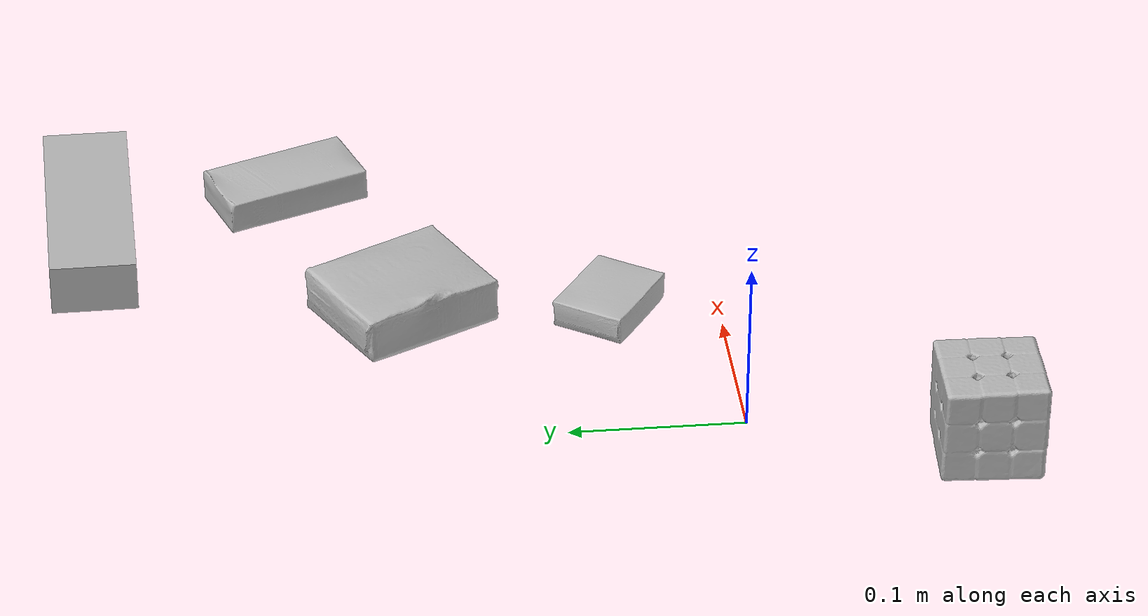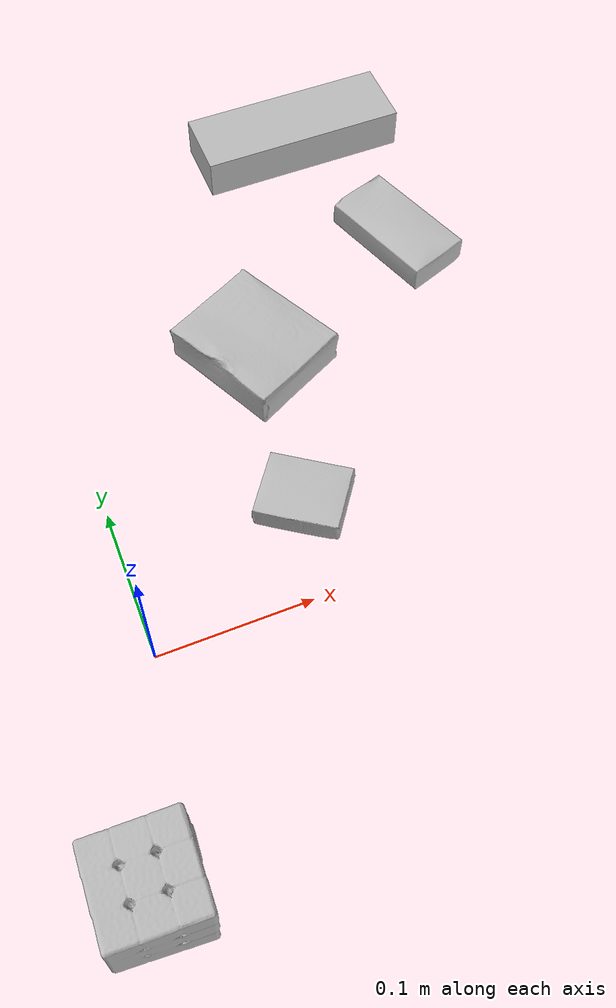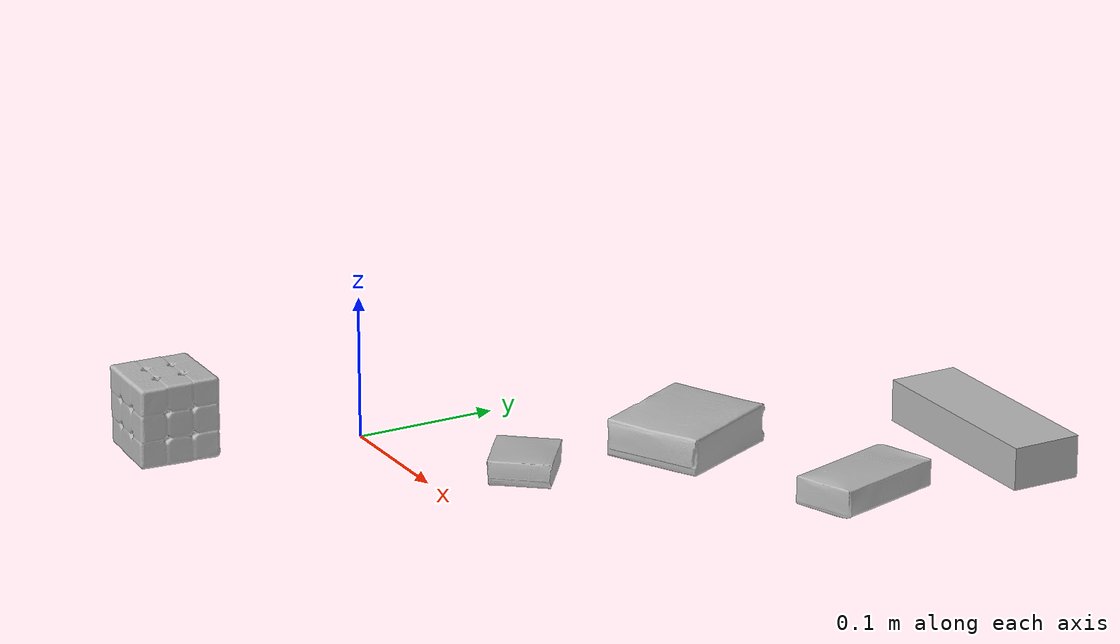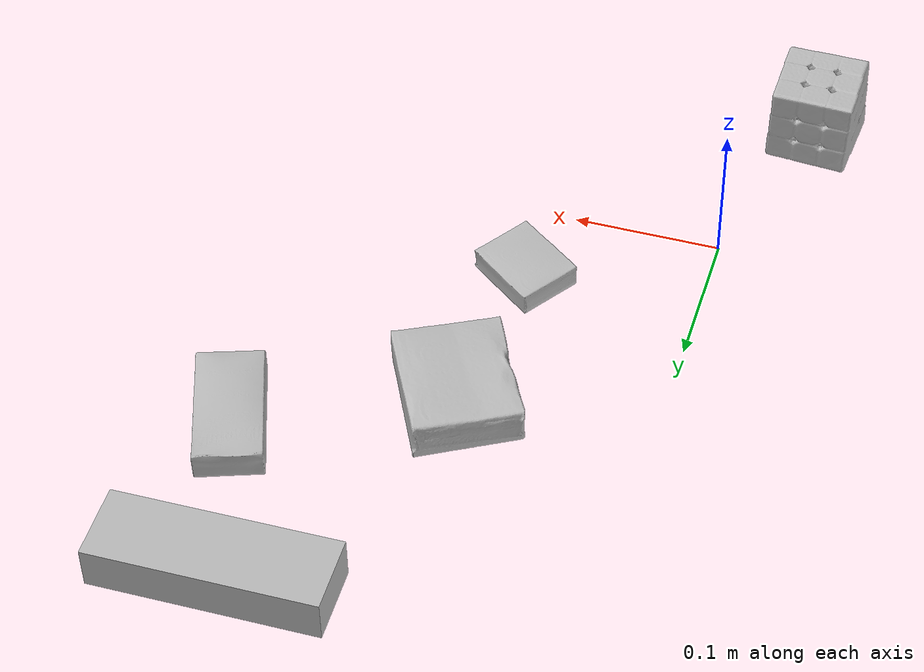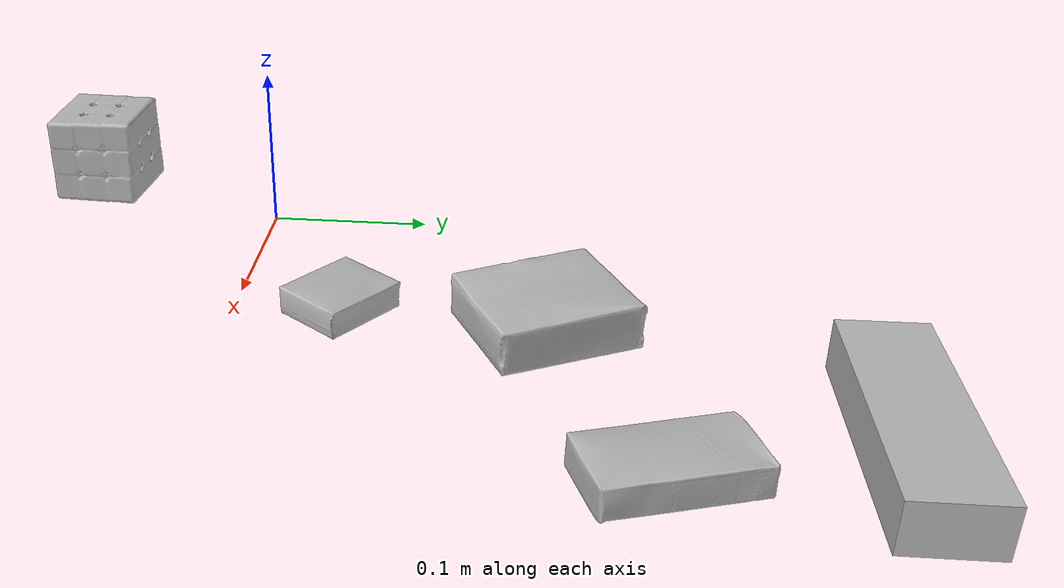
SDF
<sdf version="1.4">
  <world name="default">
    <light name="light1" type="point">
      <pose>0 0 1 0 0 0</pose>
      <diffuse>3 3 3 1</diffuse>
      <specular>3 3 3 1</specular>
    </light>
    <light name="light2" type="point">
      <pose>0 0.5 2 0 0 0</pose>
      <diffuse>1 1 1 1</diffuse>
      <specular>1 1 1 1</specular>
    </light>
    <light name="light3" type="point">
      <pose>0 0.5 2 0 0 0</pose>
      <diffuse>3 3 3 1</diffuse>
      <specular>3 3 3 1</specular>
    </light>
    <scene>
      <ambient>0.7 0.7 0.7</ambient>
    </scene>
    <model name="box1">
      <link name="link_box1">
        <collision name="default">
          <geometry>
            <mesh>
              <uri>model://sugar_box/collision_meshes/collision.obj</uri>
              <scale>0.5 0.5 0.5</scale>
            </mesh>
          </geometry>
          <surface>
            <friction>
              <ode>
                <mu>0.5</mu>
                <mu2>0.5</mu2>
              </ode>
            </friction>
          <contact>
        <ode>
            <max_vel>0</max_vel>
            <min_depth>0.0001</min_depth>
            <kp>1e8</kp>
        </ode>
    </contact></surface>
        </collision>
        <visual name="default">
          <geometry>
            <mesh>
              <uri>model://sugar_box/visual_meshes/visual.dae</uri>
              <scale>0.5 0.5 0.5</scale>
            </mesh>
          </geometry>
        </visual>
        <inertial>
          <mass>0.06211651861667633</mass>
          <pose>0.0005171863595023751 1.9245546354795806e-05 -0.00018182402709499002 -0.00040462630054681676 0.0010506634057476226 0.0026153787889456807</pose>
          <inertia>
            <ixx>1.2938825e-05</ixx>
            <iyy>4.1820942e-05</iyy>
            <izz>5.0064667e-05</izz>
            <ixy>0</ixy>
            <ixz>0</ixz>
            <iyz>0</iyz>
          </inertia>
        </inertial>
      </link>
      <pose>0.26110661029815674 0.24223744869232178 0.011399300768971443 0.0007753836622390499 -0.023432527712278026 -1.2373876149877383</pose>
    </model>
    <model name="box2">
      <link name="link_box2">
        <collision name="default">
          <geometry>
            <mesh>
              <uri>model://rubiks_cube/collision_meshes/collision.obj</uri>
              <scale>1.0 1.0 1.0</scale>
            </mesh>
          </geometry>
          <surface>
            <friction>
              <ode>
                <mu>0.5</mu>
                <mu2>0.5</mu2>
              </ode>
            </friction>
          <contact>
        <ode>
            <max_vel>0</max_vel>
            <min_depth>0.0001</min_depth>
            <kp>1e8</kp>
        </ode>
    </contact></surface>
        </collision>
        <visual name="default">
          <geometry>
            <mesh>
              <uri>model://rubiks_cube/visual_meshes/visual.dae</uri>
              <scale>1.0 1.0 1.0</scale>
            </mesh>
          </geometry>
        </visual>
        <inertial>
          <mass>0.2700360119342804</mass>
          <pose>2.6721041649580002e-05 5.256967051536776e-05 -7.264316536748083e-06 -0.05467324422766238 -0.0981422115654675 -0.034454566623261795</pose>
          <inertia>
            <ixx>0.00014921304</ixx>
            <iyy>0.00014851718</iyy>
            <izz>0.00015044949</izz>
            <ixy>0</ixy>
            <ixz>0</ixz>
            <iyz>0</iyz>
          </inertia>
        </inertial>
      </link>
      <pose>-0.04069801792502403 -0.12735359370708466 0.028678996488451958 -1.7652622733997419e-06 5.202027690940082e-07 1.5347381525928543</pose>
    </model>
    <model name="box3">
      <link name="link_box3">
        <collision name="default">
          <geometry>
            <mesh>
              <uri>model://jenga/collision_meshes/collision.obj</uri>
              <scale>1.0 1.0 1.0</scale>
            </mesh>
          </geometry>
          <surface>
            <friction>
              <ode>
                <mu>0.5</mu>
                <mu2>0.5</mu2>
              </ode>
            </friction>
          <contact>
        <ode>
            <max_vel>0</max_vel>
            <min_depth>0.0001</min_depth>
            <kp>1e8</kp>
        </ode>
    </contact></surface>
        </collision>
        <visual name="default">
          <geometry>
            <mesh>
              <uri>model://jenga/visual_meshes/visual.dae</uri>
              <scale>1.0 1.0 1.0</scale>
            </mesh>
          </geometry>
        </visual>
        <inertial>
          <mass>0.12586519122123718</mass>
          <pose>-2.502855807051674e-07 -0.00010250010382151231 -4.0923401684267446e-05 0.0 -7.342154049184251e-07 0.0</pose>
          <inertia>
            <ixx>3.482995e-05</ixx>
            <iyy>0.0002360068</iyy>
            <izz>0.00025195733</izz>
            <ixy>0</ixy>
            <ixz>0</ixz>
            <iyz>0</iyz>
          </inertia>
        </inertial>
      </link>
      <pose>0.22589674592018127 0.3594963550567627 0.014999995008111 2.133768888697768e-08 -1.3247542432067551e-09 0.01269588766422536</pose>
    </model>
    <model name="box4">
      <link name="link_box4">
        <collision name="default">
          <geometry>
            <mesh>
              <uri>model://gelatin_box/collision_meshes/collision.obj</uri>
              <scale>1.0 1.0 1.0</scale>
            </mesh>
          </geometry>
          <surface>
            <friction>
              <ode>
                <mu>0.5</mu>
                <mu2>0.5</mu2>
              </ode>
            </friction>
          <contact>
        <ode>
            <max_vel>0</max_vel>
            <min_depth>0.0001</min_depth>
            <kp>1e8</kp>
        </ode>
    </contact></surface>
        </collision>
        <visual name="default">
          <geometry>
            <mesh>
              <uri>model://gelatin_box/visual_meshes/visual.dae</uri>
              <scale>1.0 1.0 1.0</scale>
            </mesh>
          </geometry>
        </visual>
        <inertial>
          <mass>0.0925464928150177</mass>
          <pose>0.0004319618456065655 0.00011156871914863586 -0.0003640321083366871 -0.0010503719798216618 -0.004755819622564704 0.01644055760929568</pose>
          <inertia>
            <ixx>6.533027e-05</ixx>
            <iyy>4.6665074e-05</iyy>
            <izz>9.9447236e-05</izz>
            <ixy>0</ixy>
            <ixz>0</ixz>
            <iyz>0</iyz>
          </inertia>
        </inertial>
      </link>
      <pose>0.12910611927509308 0.18243658542633057 0.015168314799666405 0.005596654264450865 -0.007303710254343612 -2.679062493637808</pose>
    </model>
    <model name="box5">
      <link name="link_box5">
        <collision name="default">
          <geometry>
            <mesh>
              <uri>model://pudding_box/collision_meshes/collision.obj</uri>
              <scale>0.5 0.5 0.5</scale>
            </mesh>
          </geometry>
          <surface>
            <friction>
              <ode>
                <mu>0.5</mu>
                <mu2>0.5</mu2>
              </ode>
            </friction>
          <contact>
        <ode>
            <max_vel>0</max_vel>
            <min_depth>0.0001</min_depth>
            <kp>1e8</kp>
        </ode>
    </contact></surface>
        </collision>
        <visual name="default">
          <geometry>
            <mesh>
              <uri>model://pudding_box/visual_meshes/visual.dae</uri>
              <scale>0.5 0.5 0.5</scale>
            </mesh>
          </geometry>
        </visual>
        <inertial>
          <mass>0.0266704261302948</mass>
          <pose>0.00024474109522998333 0.00040339428232982755 -0.0002594413817860186 0.005213101812636465 -0.006603797316727521 0.020079823300208206</pose>
          <inertia>
            <ixx>7.5373864e-06</ixx>
            <iyy>5.0712065e-06</iyy>
            <izz>1.113092e-05</izz>
            <ixy>0</ixy>
            <ixz>0</ixz>
            <iyz>0</iyz>
          </inertia>
        </inertial>
      </link>
      <pose>0.11810905486345291 0.063416987657547 0.009862905368208885 0.02234824169461056 -0.01139196064363232 -2.1922791599466884</pose>
    </model>
  <physics type="ode">
      <max_contacts>50</max_contacts>
      <ode>
        <solver>
          <type>quick</type>
          <iters>75</iters>
        </solver>
        <constraints>
          <contact_max_correcting_vel>0</contact_max_correcting_vel>
          <contact_surface_layer>0</contact_surface_layer>
        </constraints>
      </ode>
    </physics></world>
</sdf>
